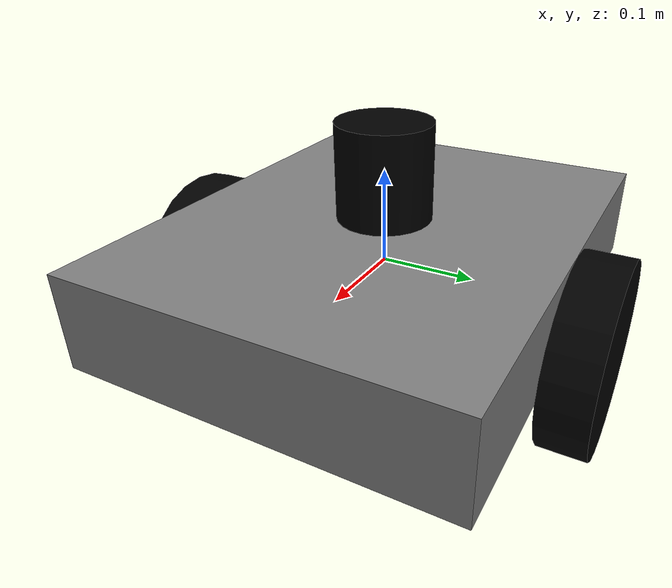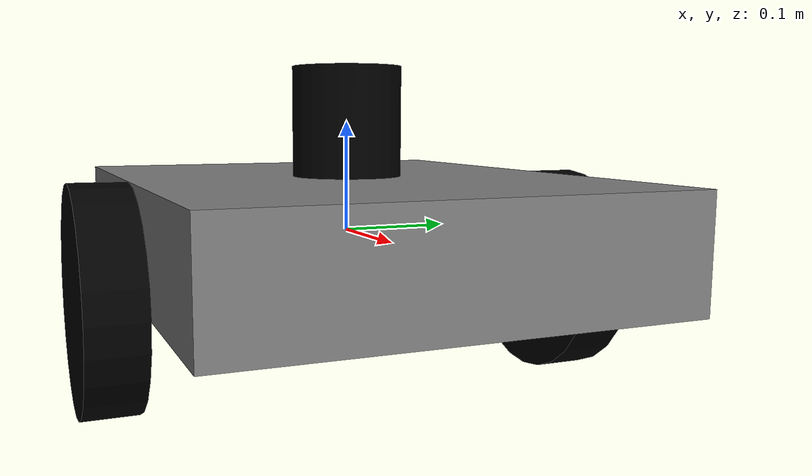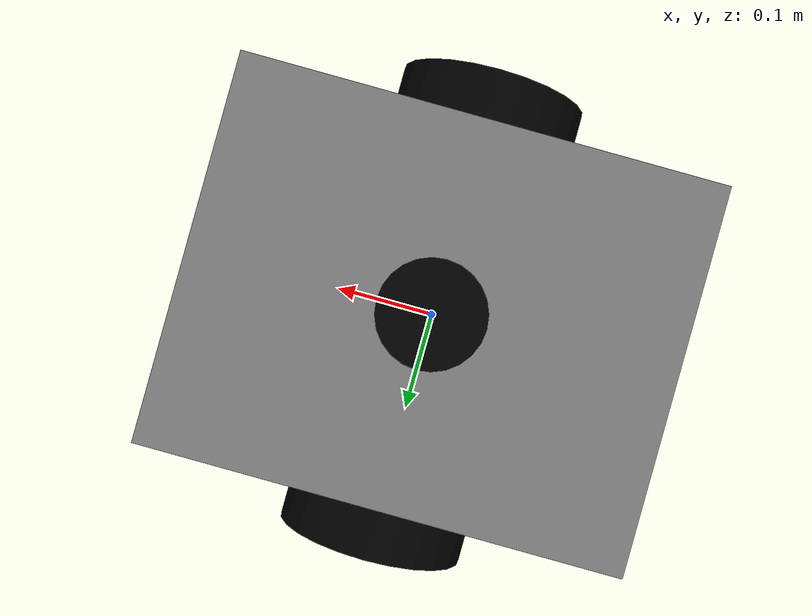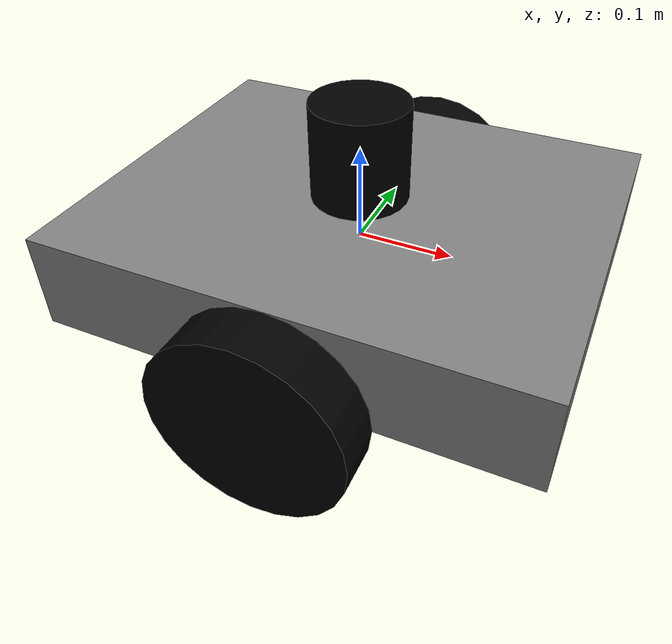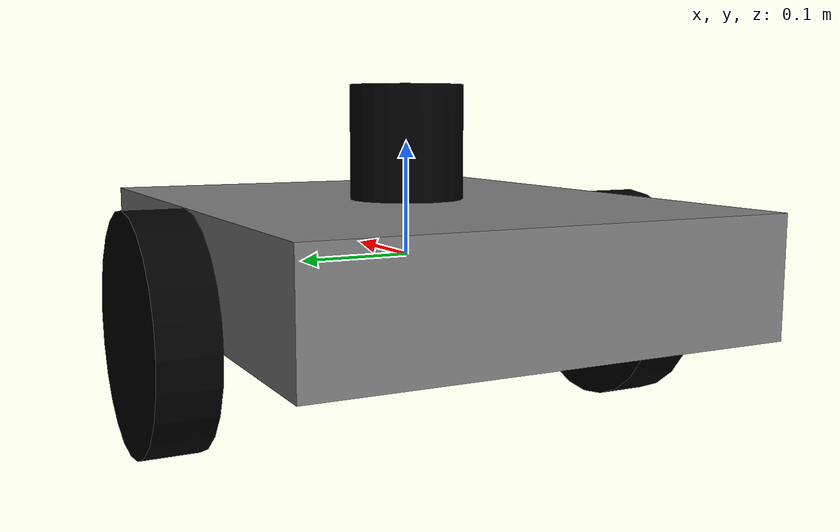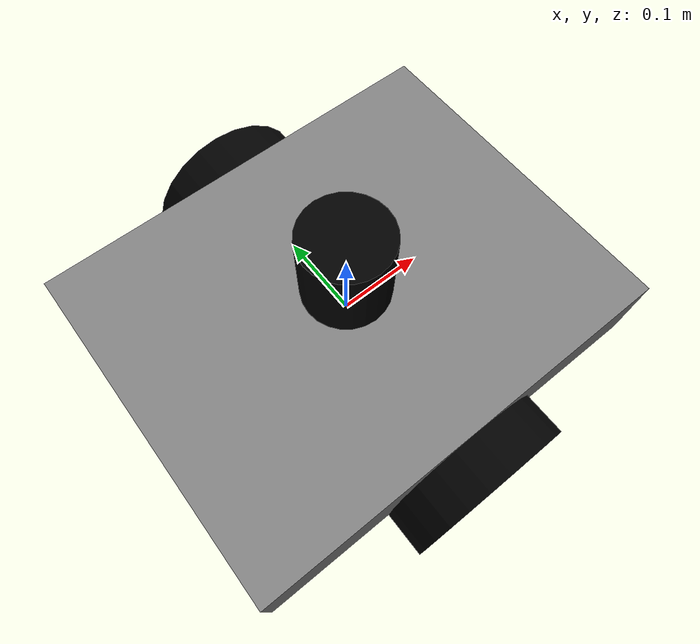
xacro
<?xml version="1.0"?>
<robot name="simple_robot" xmlns:xacro="http://www.ros.org/wiki/xacro">

  <material name="gray">
    <color rgba="0.5 0.5 0.5 1.0"/>
  </material>
  <material name="black">
    <color rgba="0.0 0.0 0.0 1.0"/>
  </material>

  <xacro:property name="wheel_radius" value="0.1"/>
  <xacro:property name="wheel_width" value="0.05"/>
  <xacro:property name="wheel_offset_y" value="0.225"/>

  <link name="base_link">
    <visual>
      <origin xyz="0.0 0.0 0.0" rpy="0.0 0.0 0.0"/>
      <geometry>
        <box size="0.5 0.4 0.1"/>
      </geometry>
      <material name="gray"/>
    </visual>
  </link>

  <xacro:macro name="wheel" params="name y_offset">
    <link name="${name}">
      <visual>
        <origin xyz="0.0 0.0 0.0" rpy="1.5708 0.0 0.0"/>
        <geometry>
          <cylinder radius="${wheel_radius}" length="${wheel_width}"/>
        </geometry>
        <material name="black"/>
      </visual>
    </link>

    <joint name="${name}_joint" type="continuous">
      <parent link="base_link"/>
      <child link="${name}"/>
      <origin xyz="0.0 ${y_offset} -0.05" rpy="0.0 0.0 0.0"/>
      <axis xyz="0.0 1.0 0.0"/>
    </joint>
  </xacro:macro>

  <xacro:wheel name="left_wheel" y_offset="${wheel_offset_y}"/>
  <xacro:wheel name="right_wheel" y_offset="${-wheel_offset_y}"/>

  <link name="lidar_link">
    <visual>
      <geometry>
        <cylinder radius="0.05" length="0.1"/>
      </geometry>
      <material name="black"/>
    </visual>
  </link>

  <joint name="lidar_joint" type="fixed">
    <parent link="base_link"/>
    <child link="lidar_link"/>
    <origin xyz="0.0 0.0 0.10" rpy="0.0 0.0 0.0"/>
  </joint>

</robot>
